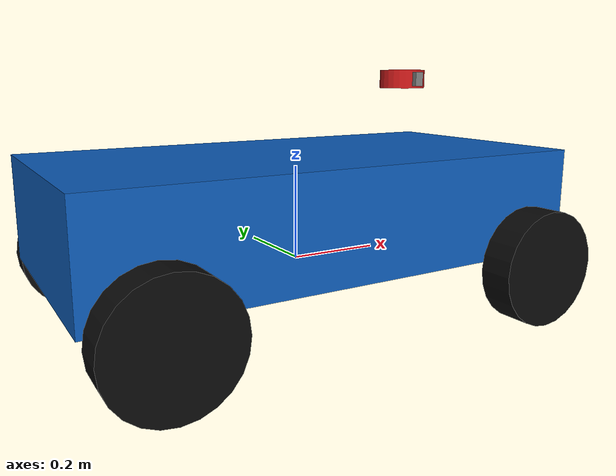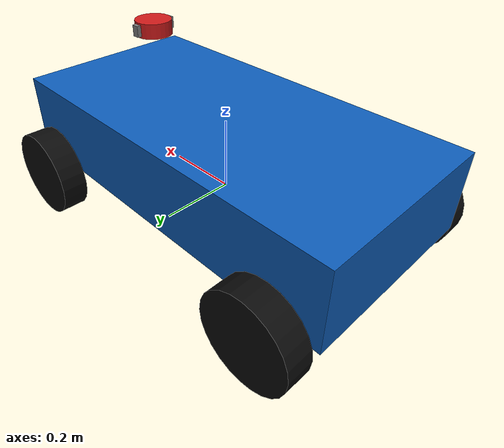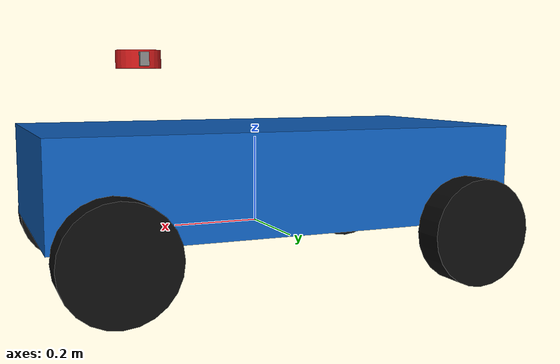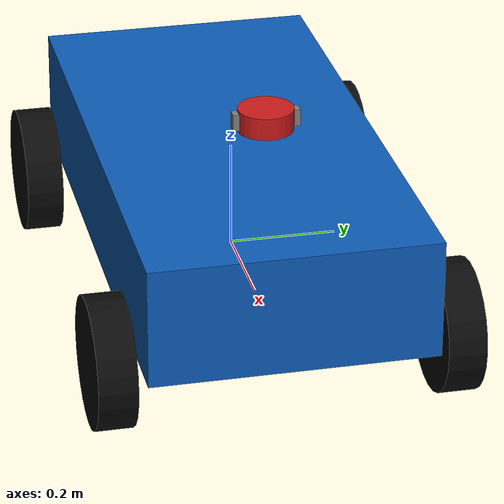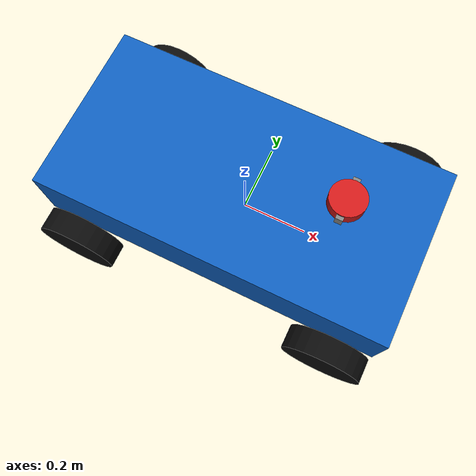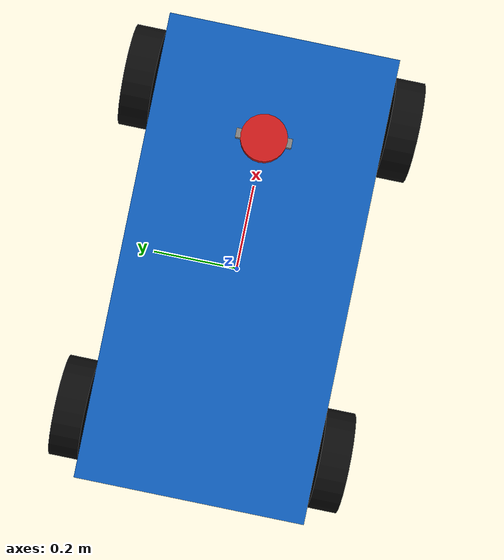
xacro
<?xml version="1.0"?>
<robot xmlns:xacro="http://ros.org/wiki/xacro" name="course_ackermann">

  <!-- Sizes taken from the course kit SDF models/course_ackermann/model.sdf.
       Units: metres, kilograms; axes follow REP-103 (x forward, y left, z up). -->
  <xacro:property name="wheelbase" value="0.8"/>
  <xacro:property name="track_width" value="0.62"/>
  <xacro:property name="wheel_radius" value="0.12"/>
  <xacro:property name="wheel_width" value="0.07"/>
  <xacro:property name="chassis_length" value="1.05"/>
  <xacro:property name="chassis_width" value="0.52"/>
  <xacro:property name="chassis_height" value="0.22"/>
  <xacro:property name="chassis_z" value="0.12"/>
  <xacro:property name="axle_x" value="${wheelbase / 2}"/>
  <xacro:property name="wheel_y" value="${track_width / 2}"/>
  <xacro:property name="sensor_x" value="0.28"/>
  <xacro:property name="sensor_z" value="0.38"/>
  <xacro:property name="camera_size_x" value="0.02"/>
  <xacro:property name="camera_size_y" value="0.12"/>
  <xacro:property name="camera_size_z" value="0.03"/>
  <xacro:property name="lidar_radius" value="0.05"/>
  <xacro:property name="lidar_height" value="0.04"/>
  <xacro:property name="imu_size" value="0.03"/>
  <xacro:property name="chassis_mass" value="12.0"/>
  <xacro:property name="wheel_mass" value="0.8"/>
  <xacro:property name="sensor_mass" value="0.033333333"/>
  <xacro:property name="pi_2" value="1.57079632679"/>

  <link name="base_link">
    <inertial>
      <origin xyz="0 0 ${chassis_z}" rpy="0 0 0"/>
      <mass value="${chassis_mass}"/>
      <inertia ixx="0.55" iyy="1.10" izz="1.40"
               ixy="0" ixz="0" iyz="0"/>
    </inertial>
    <visual>
      <origin xyz="0 0 ${chassis_z}" rpy="0 0 0"/>
      <geometry>
        <box size="${chassis_length} ${chassis_width} ${chassis_height}"/>
      </geometry>
      <material name="blue">
        <color rgba="0.05 0.36 0.72 1.0"/>
      </material>
    </visual>
    <collision>
      <origin xyz="0 0 ${chassis_z}" rpy="0 0 0"/>
      <geometry>
        <box size="${chassis_length} ${chassis_width} ${chassis_height}"/>
      </geometry>
    </collision>
  </link>

  <xacro:macro name="wheel" params="prefix x y">
    <link name="${prefix}_wheel_link">
      <inertial>
        <origin xyz="0 0 0" rpy="0 0 0"/>
        <mass value="${wheel_mass}"/>
        <!-- Solid disc about the Y axle: Iyy = m r^2 / 2,
             Ixx = Izz = m (3 r^2 + w^2) / 12. -->
        <inertia ixx="${wheel_mass * (3 * wheel_radius * wheel_radius + wheel_width * wheel_width) / 12}"
                 iyy="${wheel_mass * wheel_radius * wheel_radius / 2}"
                 izz="${wheel_mass * (3 * wheel_radius * wheel_radius + wheel_width * wheel_width) / 12}"
                 ixy="0" ixz="0" iyz="0"/>
      </inertial>
      <visual>
        <origin xyz="0 0 0" rpy="${pi_2} 0 0"/>
        <geometry>
          <cylinder radius="${wheel_radius}" length="${wheel_width}"/>
        </geometry>
        <material name="dark">
          <color rgba="0.04 0.04 0.04 1.0"/>
        </material>
      </visual>
      <collision>
        <origin xyz="0 0 0" rpy="${pi_2} 0 0"/>
        <geometry>
          <cylinder radius="${wheel_radius}" length="${wheel_width}"/>
        </geometry>
      </collision>
    </link>
    <joint name="${prefix}_wheel_joint" type="continuous">
      <parent link="base_link"/>
      <child link="${prefix}_wheel_link"/>
      <origin xyz="${x} ${y} 0" rpy="0 0 0"/>
      <axis xyz="0 1 0"/>
    </joint>
  </xacro:macro>

  <xacro:wheel prefix="front_left" x="${axle_x}" y="${wheel_y}"/>
  <xacro:wheel prefix="front_right" x="${axle_x}" y="${-wheel_y}"/>
  <xacro:wheel prefix="rear_left" x="${-axle_x}" y="${wheel_y}"/>
  <xacro:wheel prefix="rear_right" x="${-axle_x}" y="${-wheel_y}"/>

  <link name="lidar_link">
    <inertial>
      <origin xyz="0 0 0" rpy="0 0 0"/>
      <mass value="${sensor_mass}"/>
      <inertia ixx="0.000333333" iyy="0.000333333" izz="0.000333333"
               ixy="0" ixz="0" iyz="0"/>
    </inertial>
    <visual>
      <origin xyz="0 0 0" rpy="0 0 0"/>
      <geometry>
        <cylinder radius="${lidar_radius}" length="${lidar_height}"/>
      </geometry>
      <material name="red">
        <color rgba="0.8 0.1 0.1 1.0"/>
      </material>
    </visual>
    <collision>
      <origin xyz="0 0 0" rpy="0 0 0"/>
      <geometry>
        <cylinder radius="${lidar_radius}" length="${lidar_height}"/>
      </geometry>
    </collision>
  </link>
  <joint name="lidar_joint" type="fixed">
    <parent link="base_link"/>
    <child link="lidar_link"/>
    <origin xyz="${sensor_x} 0 ${sensor_z}" rpy="0 0 0"/>
  </joint>

  <link name="camera_link">
    <inertial>
      <origin xyz="0 0 0" rpy="0 0 0"/>
      <mass value="${sensor_mass}"/>
      <inertia ixx="0.000333333" iyy="0.000333333" izz="0.000333333"
               ixy="0" ixz="0" iyz="0"/>
    </inertial>
    <visual>
      <origin xyz="0 0 0" rpy="0 0 0"/>
      <geometry>
        <box size="${camera_size_x} ${camera_size_y} ${camera_size_z}"/>
      </geometry>
      <material name="grey">
        <color rgba="0.5 0.5 0.5 1.0"/>
      </material>
    </visual>
    <collision>
      <origin xyz="0 0 0" rpy="0 0 0"/>
      <geometry>
        <box size="${camera_size_x} ${camera_size_y} ${camera_size_z}"/>
      </geometry>
    </collision>
  </link>
  <joint name="camera_joint" type="fixed">
    <parent link="base_link"/>
    <child link="camera_link"/>
    <origin xyz="${sensor_x} 0 ${sensor_z}" rpy="0 0 0"/>
  </joint>

  <link name="imu_link">
    <inertial>
      <origin xyz="0 0 0" rpy="0 0 0"/>
      <mass value="${sensor_mass}"/>
      <inertia ixx="0.000333333" iyy="0.000333333" izz="0.000333333"
               ixy="0" ixz="0" iyz="0"/>
    </inertial>
    <visual>
      <origin xyz="0 0 0" rpy="0 0 0"/>
      <geometry>
        <box size="${imu_size} ${imu_size} ${imu_size}"/>
      </geometry>
      <material name="green">
        <color rgba="0.1 0.7 0.1 1.0"/>
      </material>
    </visual>
  </link>
  <joint name="imu_joint" type="fixed">
    <parent link="base_link"/>
    <child link="imu_link"/>
    <origin xyz="${sensor_x} 0 ${sensor_z}" rpy="0 0 0"/>
  </joint>

</robot>
